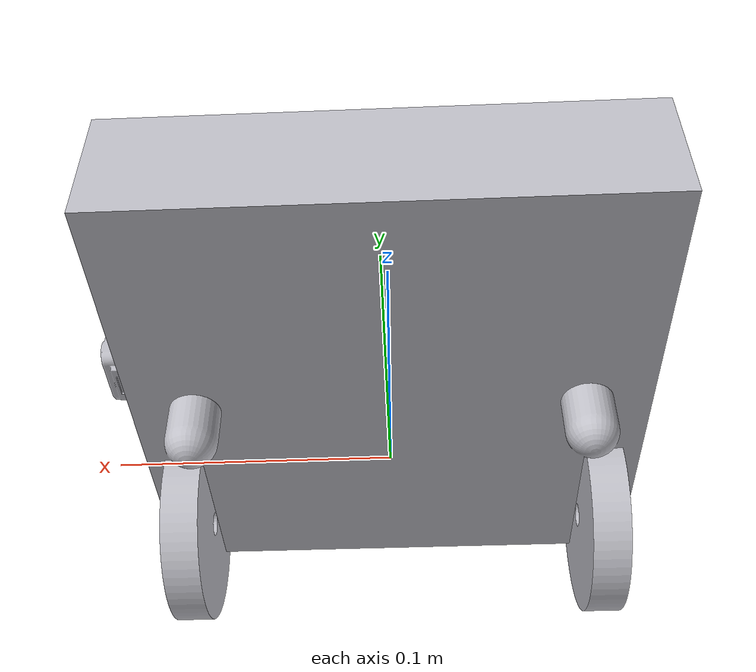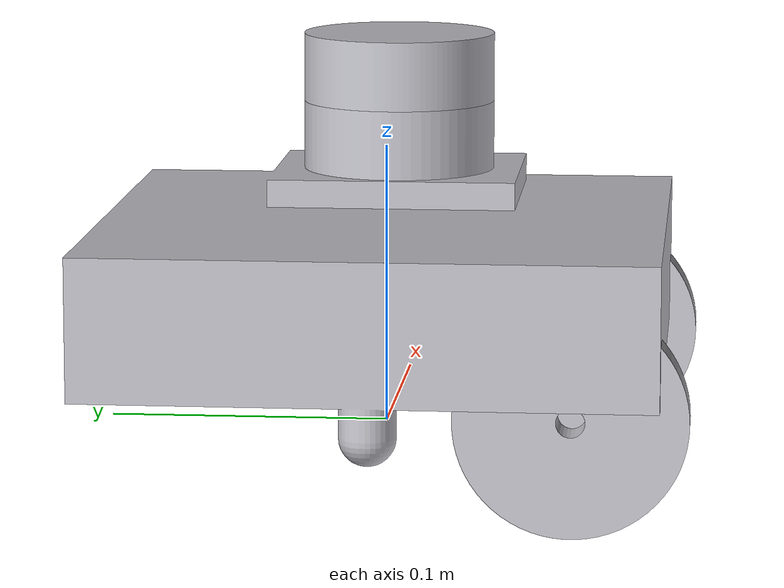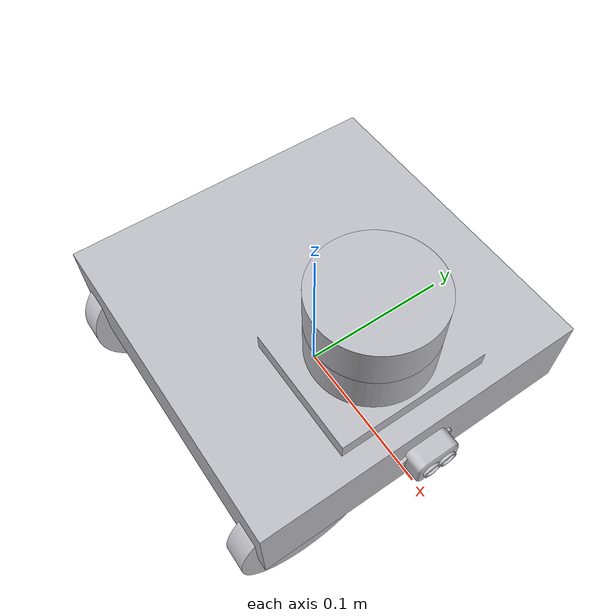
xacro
<?xml version="1.0" ?>
<robot name="car" xmlns:xacro="http://www.ros.org/wiki/xacro">

<xacro:include filename="$(find car_description)/urdf/materials.xacro" />
<xacro:include filename="$(find car_description)/urdf/car.trans" />
<xacro:include filename="$(find car_description)/urdf/car.gazebo" />
<link name="base_link">
  <inertial>
    <origin xyz="0.0037594591254762827 0.0 0.052804115668456025" rpy="0 0 0"/>
    <mass value="17.092000018976687"/>
    <inertia ixx="0.058429" iyy="0.061892" izz="0.109313" ixy="0.0" iyz="-0.0" ixz="-0.002408"/>
  </inertial>
  <visual>
    <origin xyz="0 0 0" rpy="0 0 0"/>
    <geometry>
      <mesh filename="package://car_description/meshes/base_link.stl" scale="0.001 0.001 0.001"/>
    </geometry>
    <material name="silver"/>
  </visual>
  <collision>
    <origin xyz="0 0 0" rpy="0 0 0"/>
    <geometry>
      <mesh filename="package://car_description/meshes/base_link.stl" scale="0.001 0.001 0.001"/>
    </geometry>
  </collision>
</link>

<link name="right_wheel_1">
  <inertial>
    <origin xyz="5.790023100122032e-18 -0.012499999999999997 0.0" rpy="0 0 0"/>
    <mass value="0.18260507298990664"/>
    <inertia ixx="0.000124" iyy="0.000228" izz="0.000124" ixy="0.0" iyz="-0.0" ixz="-0.0"/>
  </inertial>
  <visual>
    <origin xyz="-0.0 0.1 -0.05" rpy="0 0 0"/>
    <geometry>
      <mesh filename="package://car_description/meshes/right_wheel_1.stl" scale="0.001 0.001 0.001"/>
    </geometry>
    <material name="silver"/>
  </visual>
  <collision>
    <origin xyz="-0.0 0.1 -0.05" rpy="0 0 0"/>
    <geometry>
      <mesh filename="package://car_description/meshes/right_wheel_1.stl" scale="0.001 0.001 0.001"/>
    </geometry>
  </collision>
</link>

<link name="left_wheel_1">
  <inertial>
    <origin xyz="5.790023100122032e-18 0.012500000000000025 0.0" rpy="0 0 0"/>
    <mass value="0.18260507298990664"/>
    <inertia ixx="0.000124" iyy="0.000228" izz="0.000124" ixy="0.0" iyz="0.0" ixz="-0.0"/>
  </inertial>
  <visual>
    <origin xyz="-0.0 -0.1 -0.05" rpy="0 0 0"/>
    <geometry>
      <mesh filename="package://car_description/meshes/left_wheel_1.stl" scale="0.001 0.001 0.001"/>
    </geometry>
    <material name="silver"/>
  </visual>
  <collision>
    <origin xyz="-0.0 -0.1 -0.05" rpy="0 0 0"/>
    <geometry>
      <mesh filename="package://car_description/meshes/left_wheel_1.stl" scale="0.001 0.001 0.001"/>
    </geometry>
  </collision>
</link>

<link name="lidar_1">
  <inertial>
    <origin xyz="0.0 0.0 0.012499999999999997" rpy="0 0 0"/>
    <mass value="0.7552585088770711"/>
    <inertia ixx="0.000271" iyy="0.000271" izz="0.000463" ixy="0.0" iyz="-0.0" ixz="0.0"/>
  </inertial>
  <visual>
    <origin xyz="-0.05 -0.0 -0.11" rpy="0 0 0"/>
    <geometry>
      <mesh filename="package://car_description/meshes/lidar_1.stl" scale="0.001 0.001 0.001"/>
    </geometry>
    <material name="silver"/>
  </visual>
  <collision>
    <origin xyz="-0.05 -0.0 -0.11" rpy="0 0 0"/>
    <geometry>
      <mesh filename="package://car_description/meshes/lidar_1.stl" scale="0.001 0.001 0.001"/>
    </geometry>
  </collision>
</link>

<link name="camera_1_1">
  <inertial>
    <origin xyz="0.005933486886848693 3.484706490031186e-10 0.0006006925045628844" rpy="0 0 0"/>
    <mass value="0.006343339191276958"/>
    <inertia ixx="1e-06" iyy="0.0" izz="0.0" ixy="0.0" iyz="-0.0" ixz="-0.0"/>
  </inertial>
  <visual>
    <origin xyz="-0.1 -0.0 -0.05" rpy="0 0 0"/>
    <geometry>
      <mesh filename="package://car_description/meshes/camera_1_1.stl" scale="0.001 0.001 0.001"/>
    </geometry>
    <material name="silver"/>
  </visual>
  <collision>
    <origin xyz="-0.1 -0.0 -0.05" rpy="0 0 0"/>
    <geometry>
      <mesh filename="package://car_description/meshes/camera_1_1.stl" scale="0.001 0.001 0.001"/>
    </geometry>
  </collision>
</link>

<joint name="Revolute 1" type="continuous">
  <origin xyz="0.0 -0.1 0.05" rpy="0 0 0"/>
  <parent link="base_link"/>
  <child link="right_wheel_1"/>
  <axis xyz="0.0 1.0 0.0"/>
</joint>

<joint name="Revolute 2" type="continuous">
  <origin xyz="0.0 0.1 0.05" rpy="0 0 0"/>
  <parent link="base_link"/>
  <child link="left_wheel_1"/>
  <axis xyz="0.0 1.0 0.0"/>
</joint>

<joint name="Rigid 3" type="fixed">
  <origin xyz="0.05 0.0 0.11" rpy="0 0 0"/>
  <parent link="base_link"/>
  <child link="lidar_1"/>
</joint>

<joint name="Rigid 4" type="fixed">
  <origin xyz="0.1 0.0 0.05" rpy="0 0 0"/>
  <parent link="base_link"/>
  <child link="camera_1_1"/>
</joint>

</robot>

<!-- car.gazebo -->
<robot name="car" xmlns:xacro="http://www.ros.org/wiki/xacro" >

<xacro:property name="body_color" value="Gazebo/Silver" />

<gazebo>
  <plugin name="control" filename="libgazebo_ros_control.so"/>
</gazebo>
<gazebo reference="base_link">
  <material>${body_color}</material>
  <mu1>0.1</mu1>
  <mu2>0.1</mu2>
  <selfCollide>true</selfCollide>
  <gravity>true</gravity>
</gazebo>

<gazebo reference="right_wheel_1">
  <material>${body_color}</material>
  <mu1>1500</mu1>
  <mu2>1500</mu2>
  <selfCollide>true</selfCollide>
</gazebo>

<gazebo reference="left_wheel_1">
  <material>${body_color}</material>
  <mu1>1500</mu1>
  <mu2>1500</mu2>
  <selfCollide>true</selfCollide>
</gazebo>

<gazebo reference="lidar_1">
  <material>${body_color}</material>
  <mu1>0.2</mu1>
  <mu2>0.2</mu2>
  <selfCollide>true</selfCollide>
</gazebo>

<gazebo reference="camera_1_1">
  <material>${body_color}</material>
  <mu1>0.2</mu1>
  <mu2>0.2</mu2>
  <selfCollide>true</selfCollide>
</gazebo>

<gazebo>
  <plugin name="differential_drive_controller" filename="libgazebo_ros_diff_drive.so">

    <!-- Plugin update rate in Hz -->
    <updateRate>100</updateRate>

    <!-- Name of left joint, defaults to `left_joint` -->
    <leftJoint>Revolute 2</leftJoint>

    <!-- Name of right joint, defaults to `right_joint` -->
    <rightJoint>Revolute 1</rightJoint>

    <!-- The distance from the center of one wheel to the other, in meters, defaults to 0.34 m -->
    <wheelSeparation>0.2</wheelSeparation>

    <!-- Diameter of the wheels, in meters, defaults to 0.15 m -->
    <wheelDiameter>0.1</wheelDiameter>

    <!-- Wheel acceleration, in rad/s^2, defaults to 0.0 rad/s^2 -->
    <wheelAcceleration>1.0</wheelAcceleration>

    <!-- Maximum torque which the wheels can produce, in Nm, defaults to 5 Nm -->
    <wheelTorque>50</wheelTorque>

    <!-- Topic to receive geometry_msgs/Twist message commands, defaults to `cmd_vel` -->
    <commandTopic>cmd_vel</commandTopic>

    <!-- Topic to publish nav_msgs/Odometry messages, defaults to `odom` -->
    <odometryTopic>odom</odometryTopic>

    <!-- Odometry frame, defaults to `odom` -->
    <odometryFrame>odom</odometryFrame>

    <!-- Robot frame to calculate odometry from, defaults to `base_footprint` -->
    <robotBaseFrame>base_link</robotBaseFrame>

    <!-- Odometry source, 0 for ENCODER, 1 for WORLD, defaults to WORLD -->
    <odometrySource>1</odometrySource>

    <!-- Set to true to publish transforms for the wheel links, defaults to false -->
    <publishWheelTF>true</publishWheelTF>

    <!-- Set to true to publish transforms for the odometry, defaults to true -->
    <publishOdom>true</publishOdom>

    <!-- Set to true to publish sensor_msgs/JointState on /joint_states for the wheel joints, defaults to false -->
    <publishWheelJointState>true</publishWheelJointState>

    <!-- Set to true to swap right and left wheels, defaults to true -->
    <legacyMode>false</legacyMode>
  </plugin>
</gazebo>
<!-- hokuyo -->
  <gazebo reference="lidar_1">
    <sensor type="ray" name="head_hokuyo_sensor">
      <pose>0 0 0 0 0 0</pose>
      <visualize>true</visualize>
      <update_rate>40</update_rate>
      <ray>
        <scan>
          <horizontal>
            <samples>720</samples>
            <resolution>1</resolution>
            <min_angle>-1.570796</min_angle>
            <max_angle>1.570796</max_angle>
          </horizontal>
        </scan>
        <range>
          <min>0.10</min>
          <max>30.0</max>
          <resolution>0.01</resolution>
        </range>
        <noise>
          <type>gaussian</type>
          <mean>0.0</mean>
          <stddev>0.01</stddev>
        </noise>
      </ray>
      <plugin name="gazebo_ros_head_hokuyo_controller" filename="libgazebo_ros_laser.so">
        <topicName>/rrbot/laser/scan</topicName>
        <frameName>lidar_1</frameName>
      </plugin>
    </sensor>
  </gazebo>
 <!-- camera -->
  <gazebo reference="camera_1_1">
    <sensor type="camera" name="camera1">
      <update_rate>30.0</update_rate>
      <camera name="head">
        <horizontal_fov>1.3962634</horizontal_fov>
        <image>
          <width>800</width>
          <height>800</height>
          <format>R8G8B8</format>
        </image>
        <clip>
          <near>0.03</near>
          <far>100</far>
        </clip>

      </camera>
      <plugin name="camera_controller" filename="libgazebo_ros_camera.so">
        <alwaysOn>true</alwaysOn>
        <updateRate>30.0</updateRate>
        <cameraName>/</cameraName>
        <imageTopicName>image_raw</imageTopicName>
        <cameraInfoTopicName>camera_info</cameraInfoTopicName>
        <frameName>camera_1_1</frameName>
        <hackBaseline>0.07</hackBaseline>
        <distortionK1>0.0</distortionK1>
        <distortionK2>0.0</distortionK2>
        <distortionK3>0.0</distortionK3>
        <distortionT1>0.0</distortionT1>
        <distortionT2>0.0</distortionT2>
      </plugin>
    </sensor>
  </gazebo>

</robot>
